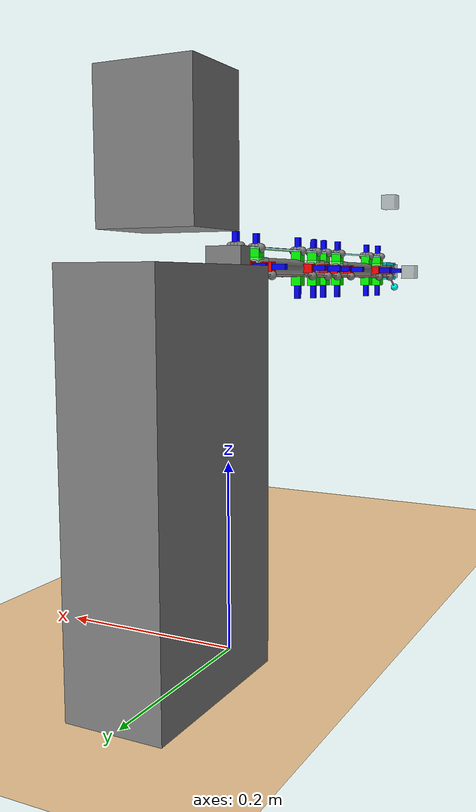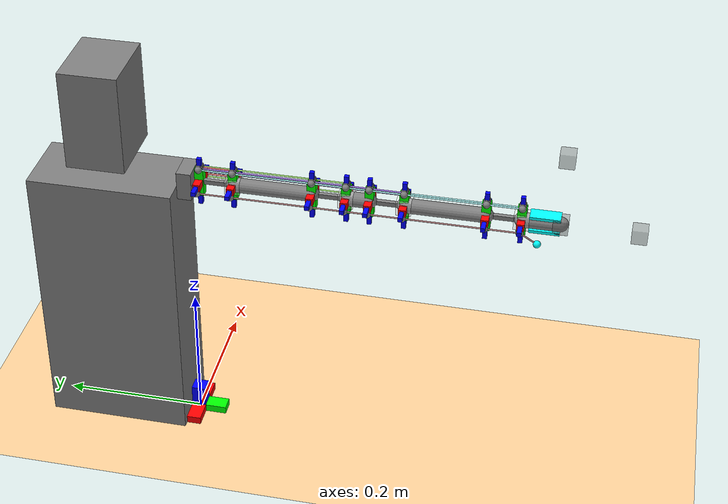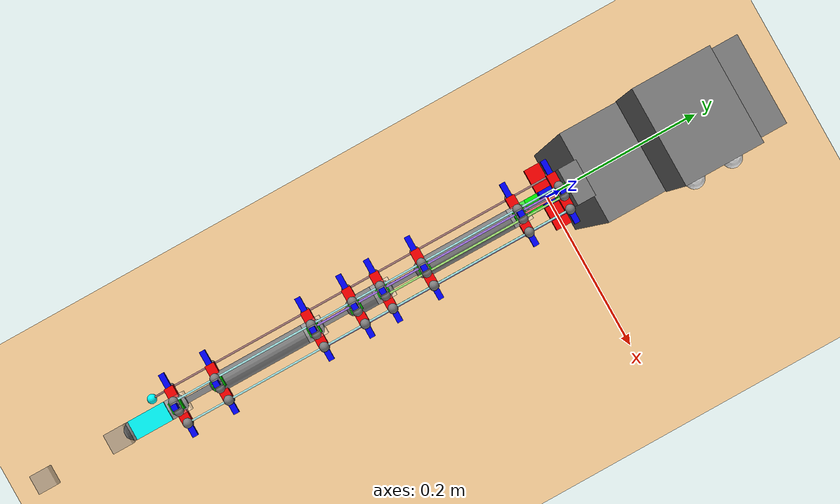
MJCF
<mujoco>

<!-- Default-Parameter für Geometrien -->
<default>
    <geom density="300"/>
</default>

<!-- Simulationsoptionen -->
<option gravity="0 0 0"/>

<!-- Compiler- und Asset-Einstellungen -->
<compiler angle="radian" meshdir="." autolimits="true"/>
<asset>
    <!-- Optional: STL-Modelle hier einfügen -->
</asset>

<worldbody>

    <!-- Lichtquelle -->
    <light directional="true" pos="-0.5 0.5 3" dir="0 0 -1" />

    <!-- Boden (Tischplatte) -->
    <geom name="table" type="plane" pos="0 0 0" size="1 1 1" rgba="1 0.83 0.61 0.5"/>

    <!-- Orientierungshilfen (Achsen) -->
    <geom name="x-axis" type="box" size="0.04 0.01 0.01" rgba="1 0 0 1" contype="0" conaffinity="0"/>
    <geom name="y-axis" type="box" size="0.01 0.04 0.01" rgba="0 1 0 1" contype="0" conaffinity="0"/>
    <geom name="z-axis" type="box" size="0.01 0.01 0.04" rgba="0 0 1 1" contype="0" conaffinity="0"/>

    <!-- ROBOT Körper -->
    <geom name="robot" type="box" size="0.05 0.1 0.2" pos="0 0.11 0.2" rgba="0.5 0.5 0.5 1" contype="0" conaffinity="0"/>

    <!-- ROBOT Kopf -->
    <geom name="head" type="box" size="0.05 0.04 0.07" pos="0 0.11 0.5" rgba="0.5 0.5 0.5 1" contype="0" conaffinity="0"/>

    <!-- ROBOT Augen -->
    <geom name="eye_left"  type="sphere" size="0.01" pos="0.05 0.09 0.5" rgba="1 1 1 1" contype="0" conaffinity="0"/>
    <geom name="eye_right" type="sphere" size="0.01" pos="0.05 0.13 0.5" rgba="1 1 1 1" contype="0" conaffinity="0"/>

	<!-- Rotate 90° around X axis and place the arm 40 cm above table surface -->
	<body name="arm_base" pos="0 0 0.4" euler="1.5708 0 0">
		<geom name="arm_base_geom" type="box" size="0.02 0.02 0.01" rgba="0.5 0.5 0.5 1" contype="0" conaffinity="0"/>

		<!-- Arm rotation around Z axis -->
		<body name="arm_rot" pos="0 0 0">
			<joint name="arm_z_joint" type="hinge" axis="0 0 1" pos="0 0 0" damping="0.01" range="-3.14 3.14"/>

			<!-- Base of shoulder joint after arm rotation-->
			<body name="shoulder_base" pos="0 0 0">
				<geom name="shoulder_base_geom" type="box" size="0.02 0.02 0.01" rgba="0.5 0.5 0.5 1" contype="0" conaffinity="0"/>

				<!-- Shoulder frame with tendon anchors -->
				<body name="shoulder_frame" pos="0 0 0.04">
					<geom name="shoulder_frame_x" type="box" size="0.003" fromto="-.035 0 -.023 .035 0 -.023" rgba="0 0 1 1" contype="0" conaffinity="0"/>
					<geom name="shoulder_frame_y" type="box" size="0.003" fromto="0 -.035 -.023 0 .035 -.023" rgba="0 0 1 1" contype="0" conaffinity="0"/>

					<!-- Tendon anchors (8 starts + 1 gripper) -->
					<site name="sh_tendon_gripper"        pos=" -0.0186 -0.0087  -0.023" size="0.005 "/>
					<site name="sh_tendon_x_start_1"      pos=" 0.0204 -0.0018  -0.023" size="0.005 "/>
					<site name="sh_tendon_x_start_2"      pos=" 0.0198 -0.0053  -0.023" size="0.005 "/>
					<site name="sh_tendon_x_start_3"      pos=" 0.0204  0.0018  -0.023" size="0.005 "/>
					<site name="sh_tendon_x_start_4"      pos=" 0.0198  0.0053  -0.023" size="0.005 "/>
					<site name="sh_tendon_y_start_1"      pos=" 0.0018  0.0204  -0.023" size="0.005 "/>
					<site name="sh_tendon_y_start_2"      pos=" 0.0053  0.0198  -0.023" size="0.005 "/>
					<site name="sh_tendon_y_start_3"      pos=" -0.0018 0.0204  -0.023" size="0.005 "/>
					<site name="sh_tendon_y_start_4"      pos=" -0.0053 0.0198  -0.023" size="0.005 "/>

                    <body name="shoulder_xjoint1" pos="0 0 0">
                        <geom name="shoulder_xjoint1" type="box" size=".005" fromto="-.02 0 -.023 .02 0 -.023" rgba="1 0 0 1" contype="0" conaffinity="0"/>
                        <joint name="shoulder_xjoint1" type="hinge" axis="1 0 0" pos="0 0 -.023" damping="0.02" range="-0.7854 0.7854"/>

                        <body name="shoulder_yjoint1" pos="0 0 0">
                            <geom name="shoulder_connector" type="box" size=".003" fromto="0 0 -.023 0 0 .023" rgba=".5 .5 .5 1" contype="0" conaffinity="0"/>
                            <geom name="shoulder_yjoint1" type="box" size=".006" fromto="0 0.02 -.023 0 -0.02 -.023" rgba="0 1 0 1" contype="0" conaffinity="0"/>
                            <joint name="shoulder_yjoint1" type="hinge" axis="0 1 0" pos="0 0 -.023" damping="0.02" range="-0.7854 0.7854"/>

                            <geom name="shoulder_yjoint2" type="box" size=".006" fromto="0 0.02 .023 0 -0.02 .023" rgba="0 1 0 1" contype="0" conaffinity="0"/>
                            <body name="shoulder_yjoint2" pos="0 0 0">
                                <joint name="shoulder_yjoint2" type="hinge" axis="0 1 0" pos="0 0 .023" damping="0.02" range="-0.7854 0.7854"/>

                                <geom name="shoulder_xjoint2" type="box" size=".005" fromto="-.02 0 .023 .02 0 .023" rgba="1 0 0 1" contype="0" conaffinity="0"/>
                                <body name="shoulder_end" pos="0 0 .023">
                                    <geom name="shoulder_box" type="box" size=".01 .01 .01" rgba="1 1 1 .3" contype="0" conaffinity="0" mass="0"/>
                                    <joint name="shoulder_xjoint2" type="hinge" axis="1 0 0" pos="0 0 0" damping="0.02" range="-0.7854 0.7854"/>
                                    <geom name="endframex" type="box" size=".003" fromto="-.035 0 0 .035 0 0" rgba="0 0 1 1" contype="0" conaffinity="0"/>
                                    <geom name="endframey" type="box" size=".003" fromto="0 -.035 0 0 .035 0" rgba="0 0 1 1" contype="0" conaffinity="0"/>
                                    <!-- Seilanker (8 Endpunkte + 1* gripper) -->
                                    <site name="sh_tendon_gripper_end"     pos=" -0.0186 -0.0087  0.0" size="0.005"/>
                                    <site name="sh_tendon_x_end_1"         pos=" 0.0204 -0.0018  0.0" size="0.005"/>
                                    <site name="sh_tendon_x_end_2"         pos=" 0.0198 -0.0053  0.0" size="0.005"/>
                                    <site name="sh_tendon_x_end_3"         pos=" 0.0204  0.0018  0.0" size="0.005"/>
                                    <site name="sh_tendon_x_end_4"         pos=" 0.0198  0.0053  0.0" size="0.005"/>
                                    <site name="sh_tendon_y_end_1"         pos=" 0.0018  0.0204  0.0" size="0.005"/>
                                    <site name="sh_tendon_y_end_2"         pos=" 0.0053  0.0198  0.0" size="0.005"/>
                                    <site name="sh_tendon_y_end_3"         pos=" -0.0018 0.0204  0.0" size="0.005"/>
                                    <site name="sh_tendon_y_end_4"         pos=" -0.0053 0.0198  0.0" size="0.005"/>

                                    <!-- Connector between shoulder and elbow -->
                                    <geom name="link_shoulder_elbow1" type="capsule" fromto="0 0 0 0 0 0.107" size="0.01" rgba="0.5 0.5 0.5 1" contype="0" conaffinity="0"/>

                                    <!-- ELBOW JOINT 1 -->
                                    <body name="elbow1base" pos="0 0 0.13">
                                        <geom name="elbow1framex" type="box" size=".003" fromto="-.035 0 -.023 .035 0 -.023" rgba="0 0 1 1" contype="0" conaffinity="0"/>
                                        <geom name="elbow1framey" type="box" size=".003" fromto="0 -.035 -.023 0 .035 -.023" rgba="0 0 1 1" contype="0" conaffinity="0"/>
                                        <!-- Seilanker el1 (8 Startpunkte + 1* gripper) -->
                                        <site name="el1_tendon_gripper"     pos=" -0.0186 -0.0087  -0.023" size="0.005 "/>
                                        <site name="el1_tendon_x_start_1"   pos=" 0.0204 -0.0018  -0.023" size="0.005 "/>
                                        <site name="el1_tendon_x_start_2"   pos=" 0.0198 -0.0053  -0.023" size="0.005 "/>
                                        <site name="el1_tendon_x_start_3"   pos=" 0.0204  0.0018  -0.023" size="0.005 "/>
                                        <site name="el1_tendon_x_start_4"   pos=" 0.0198  0.0053  -0.023" size="0.005 "/>
                                        <site name="el1_tendon_y_start_1"   pos=" 0.0018  0.0204  -0.023" size="0.005 "/>
                                        <site name="el1_tendon_y_start_2"   pos=" 0.0053  0.0198  -0.023" size="0.005 "/>
                                        <site name="el1_tendon_y_start_3"   pos=" -0.0018 0.0204  -0.023" size="0.005 "/>
                                        <site name="el1_tendon_y_start_4"   pos=" -0.0053 0.0198  -0.023" size="0.005 "/>

                                        <body name="elbow1_xjoint1" pos="0 0 0">
                                            <geom name="elbow1_xjoint1" type="box" size=".005" fromto="-.02 0 -.023 .02 0 -.023" rgba="1 0 0 1" contype="0" conaffinity="0"/>
                                            <joint name="elbow1_xjoint1" type="hinge" axis="1 0 0" pos="0 0 -.023" damping="0.02" range="-0.7854 0.7854" />
                                            <body name="elbow1_yjoint1" pos="0 0 0">
                                                <geom name="elbow1_connector" type="box" size=".003" fromto="0 0 -.023 0 0 .023" rgba=".5 .5 .5 1" contype="0" conaffinity="0"/>
                                                <geom name="elbow1_yjoint1" type="box" size=".006" fromto="0 0.02 -.023 0 -0.02 -.023" rgba="0 1 0 1" contype="0" conaffinity="0"/>
                                                <joint name="elbow1_yjoint1" type="hinge" axis="0 1 0" pos="0 0 -.023" damping="0.02" range="-0.7854 0.7854"/>
                                                <geom name="elbow1_yjoint2" type="box" size=".006" fromto="0 0.02 .023 0 -0.02 .023" rgba="0 1 0 1" contype="0" conaffinity="0"/>
                                                <body name="elbow1_yjoint2" pos="0 0 0">
                                                    <joint name="elbow1_yjoint2" type="hinge" axis="0 1 0" pos="0 0 .023" damping="0.02" range="-0.7854 0.7854"/>
                                                    <geom name="elbow1_xjoint2" type="box" size=".005" fromto="-.02 0 .023 .02 0 .023" rgba="1 0 0 1" contype="0" conaffinity="0"/>
                                                    <body name="elbow1_end" pos="0 0 .023">
                                                        <geom name="elbow1_box" type="box" size=".01 .01 .01" rgba="1 1 1 .3" contype="0" conaffinity="0" mass="0"/>
                                                        <joint name="elbow1_xjoint2" type="hinge" axis="1 0 0" pos="0 0 0" damping="0.02" range="-0.7854 0.7854"/>
                                                        <geom name="elbow1framex_end" type="box" size=".003" fromto="-.035 0 0 .035 0 0" rgba="0 0 1 1" contype="0" conaffinity="0"/>
                                                        <geom name="elbow1framey_end" type="box" size=".003" fromto="0 -.035 0 0 .035 0" rgba="0 0 1 1" contype="0" conaffinity="0"/>
                                                        <!-- Seilanker el1 (8 Endpunkte + 1* gripper) -->
                                                        <site name="el1_tendon_gripper_end"     pos=" -0.0186 -0.0087  0.0" size="0.005"/>
                                                        <site name="el1_tendon_x_end_1"         pos=" 0.0204 -0.0018  0.0" size="0.005"/>
                                                        <site name="el1_tendon_x_end_2"         pos=" 0.0198 -0.0053  0.0" size="0.005"/>
                                                        <site name="el1_tendon_x_end_3"         pos=" 0.0204  0.0018  0.0" size="0.005"/>
                                                        <site name="el1_tendon_x_end_4"         pos=" 0.0198  0.0053  0.0" size="0.005"/>
                                                        <site name="el1_tendon_y_end_1"         pos=" 0.0018  0.0204  0.0" size="0.005"/>
                                                        <site name="el1_tendon_y_end_2"         pos=" 0.0053  0.0198  0.0" size="0.005"/>
                                                        <site name="el1_tendon_y_end_3"         pos=" -0.0018 0.0204  0.0" size="0.005"/>
                                                        <site name="el1_tendon_y_end_4"         pos=" -0.0053 0.0198  0.0" size="0.005"/>

                                                        <!--Connector between elbow1 and elbow2-->
                                                        <geom name="link_elbow1_elbow2" type="capsule" fromto="0 0 0 0 0 0.031" size="0.01" rgba="0.5 0.5 0.5 1" contype="0" conaffinity="0"/>
                                                        <site  name="elbow_site" pos="0 0 0.0155" size="0.01" rgba="0 1 1 1"/>
                                                        <!-- ELBOW JOINT 2 -->
                                                        <body name="elbow2base" pos="0 0 0.054">
                                                            <geom name="elbow2framex" type="box" size=".003" fromto="-.035 0 -.023 .035 0 -.023" rgba="0 0 1 1" contype="0" conaffinity="0"/>
                                                            <geom name="elbow2framey" type="box" size=".003" fromto="0 -.035 -.023 0 .035 -.023" rgba="0 0 1 1" contype="0" conaffinity="0"/>
                                                            <!-- Seilanker el2 (8 Startpunkte + 1* gripper) -->
                                                            <site name="el2_tendon_gripper"     pos=" -0.0186 -0.0087  -0.023" size="0.005 "/>
                                                            <site name="el2_tendon_x_start_1"   pos=" 0.0204 -0.0018  -0.023" size="0.005 "/>
                                                            <site name="el2_tendon_x_start_2"   pos=" 0.0198 -0.0053  -0.023" size="0.005 "/>
                                                            <site name="el2_tendon_x_start_3"   pos=" 0.0204  0.0018  -0.023" size="0.005 "/>
                                                            <site name="el2_tendon_x_start_4"   pos=" 0.0198  0.0053  -0.023" size="0.005 "/>
                                                            <site name="el2_tendon_y_start_1"   pos=" 0.0018  0.0204  -0.023" size="0.005 "/>
                                                            <site name="el2_tendon_y_start_2"   pos=" 0.0053  0.0198  -0.023" size="0.005 "/>
                                                            <site name="el2_tendon_y_start_3"   pos=" -0.0018 0.0204  -0.023" size="0.005 "/>
                                                            <site name="el2_tendon_y_start_4"   pos=" -0.0053 0.0198  -0.023" size="0.005 "/>

                                                            <body name="elbow2_xjoint1" pos="0 0 0">
                                                                <geom name="elbow2_xjoint1" type="box" size=".005" fromto="-.02 0 -.023 .02 0 -.023" rgba="1 0 0 1" contype="0" conaffinity="0"/>
                                                                <joint name="elbow2_xjoint1" type="hinge" axis="1 0 0" pos="0 0 -.023" damping="0.02" range="-0.7854 0.7854"/>
                                                                <body name="elbow2_yjoint1" pos="0 0 0">
                                                                    <geom name="elbow2_connector" type="box" size=".003" fromto="0 0 -.023 0 0 .023" rgba=".5 .5 .5 1" contype="0" conaffinity="0"/>
                                                                    <geom name="elbow2_yjoint1" type="box" size=".006" fromto="0 0.02 -.023 0 -0.02 -.023" rgba="0 1 0 1" contype="0" conaffinity="0"/>
                                                                    <joint name="elbow2_yjoint1" type="hinge" axis="0 1 0" pos="0 0 -.023" damping="0.02" range="-0.7854 0.7854"/>
                                                                    <geom name="elbow2_yjoint2" type="box" size=".006" fromto="0 0.02 .023 0 -0.02 .023" rgba="0 1 0 1" contype="0" conaffinity="0"/>
                                                                    <body name="elbow2_yjoint2" pos="0 0 0">
                                                                        <joint name="elbow2_yjoint2" type="hinge" axis="0 1 0" pos="0 0 .023" damping="0.02" range="-0.7854 0.7854"/>
                                                                        <geom name="elbow2_xjoint2" type="box" size=".005" fromto="-.02 0 .023 .02 0 .023" rgba="1 0 0 1" contype="0" conaffinity="0"/>
                                                                        <body name="elbow2_end" pos="0 0 .023">
                                                                            <geom name="elbow2_box" type="box" size=".01 .01 .01" rgba="1 1 1 .3" contype="0" conaffinity="0" mass="0"/>
                                                                            <joint name="elbow2_xjoint2" type="hinge" axis="1 0 0" pos="0 0 0" damping="0.02" range="-0.7854 0.7854"/>
                                                                            <geom name="elbow2framex_end" type="box" size=".003" fromto="-.035 0 0 .035 0 0" rgba="0 0 1 1" contype="0" conaffinity="0"/>
                                                                            <geom name="elbow2framey_end" type="box" size=".003" fromto="0 -.035 0 0 .035 0" rgba="0 0 1 1" contype="0" conaffinity="0"/>
                                                                            <!-- Seilanker el2 (8 Endpunkte + 1* gripper) -->
                                                                            <site name="el2_tendon_gripper_end"     pos=" -0.0186 -0.0087  0.0" size="0.005"/>
                                                                            <site name="el2_tendon_x_end_1"         pos=" 0.0204 -0.0018  0.0" size="0.005"/>
                                                                            <site name="el2_tendon_x_end_2"         pos=" 0.0198 -0.0053  0.0" size="0.005"/>
                                                                            <site name="el2_tendon_x_end_3"         pos=" 0.0204  0.0018  0.0" size="0.005"/>
                                                                            <site name="el2_tendon_x_end_4"         pos=" 0.0198  0.0053  0.0" size="0.005"/>
                                                                            <site name="el2_tendon_y_end_1"         pos=" 0.0018  0.0204  0.0" size="0.005"/>
                                                                            <site name="el2_tendon_y_end_2"         pos=" 0.0053  0.0198  0.0" size="0.005"/>
                                                                            <site name="el2_tendon_y_end_3"         pos=" -0.0018 0.0204  0.0" size="0.005"/>
                                                                            <site name="el2_tendon_y_end_4"         pos=" -0.0053 0.0198  0.0" size="0.005"/>

                                                                            <!--Connector between elbow2 and wrist-->
                                                                            <geom name="link_elbow2_wrist" type="capsule" fromto="0 0 0 0 0 0.107" size="0.01" rgba="0.5 0.5 0.5 1" contype="0" conaffinity="0"/>

                                                                            <!-- WRIST JOINT -->

                                                                            <body name="wristbase" pos="0 0 0.13">
                                                                                <geom name="wristframex" type="box" size=".003" fromto="-.035 0 -.023 .035 0 -.023" rgba="0 0 1 1" contype="0" conaffinity="0"/>
                                                                                <geom name="wristframey" type="box" size=".003" fromto="0 -.035 -.023 0 .035 -.023" rgba="0 0 1 1" contype="0" conaffinity="0"/>
                                                                            <!-- Seilanker wr (8 Startpunkte + 1* gripper) -->
                                                                            <site name="wr_tendon_gripper"     pos=" -0.0186 -0.0087  -0.023" size="0.005 "/>
                                                                            <site name="wr_tendon_x_start_1"   pos=" 0.0204 -0.0018  -0.023" size="0.005 "/>
                                                                            <site name="wr_tendon_x_start_2"   pos=" 0.0198 -0.0053  -0.023" size="0.005 "/>
                                                                            <site name="wr_tendon_x_start_3"   pos=" 0.0204  0.0018  -0.023" size="0.005 "/>
                                                                            <site name="wr_tendon_x_start_4"   pos=" 0.0198  0.0053  -0.023" size="0.005 "/>
                                                                            <site name="wr_tendon_y_start_1"   pos=" 0.0018  0.0204  -0.023" size="0.005 "/>
                                                                            <site name="wr_tendon_y_start_2"   pos=" 0.0053  0.0198  -0.023" size="0.005 "/>
                                                                            <site name="wr_tendon_y_start_3"   pos=" -0.0018 0.0204  -0.023" size="0.005 "/>
                                                                            <site name="wr_tendon_y_start_4"   pos=" -0.0053 0.0198  -0.023" size="0.005 "/>

                                                                                <body name="wrist_xjoint1" pos="0 0 0">
                                                                                    <geom name="wrist_xjoint1" type="box" size=".005" fromto="-.02 0 -.023 .02 0 -.023" rgba="1 0 0 1" contype="0" conaffinity="0"/>
                                                                                    <joint name="wrist_xjoint1" type="hinge" axis="1 0 0" pos="0 0 -.023" damping="0.02" range="-0.7854 0.7854"/>
                                                                                    <body name="wrist_yjoint1" pos="0 0 0">
                                                                                        <geom name="wrist_connector" type="box" size=".003" fromto="0 0 -.023 0 0 .023" rgba=".5 .5 .5 1" contype="0" conaffinity="0"/>
                                                                                        <geom name="wrist_yjoint1" type="box" size=".006" fromto="0 0.02 -.023 0 -0.02 -.023" rgba="0 1 0 1" contype="0" conaffinity="0"/>
                                                                                        <joint name="wrist_yjoint1" type="hinge" axis="0 1 0" pos="0 0 -.023" damping="0.02" range="-0.7854 0.7854"/>
                                                                                        <geom name="wrist_yjoint2" type="box" size=".006" fromto="0 0.02 .023 0 -0.02 .023" rgba="0 1 0 1" contype="0" conaffinity="0"/>
                                                                                        <body name="wrist_yjoint2" pos="0 0 0">
                                                                                            <joint name="wrist_yjoint2" type="hinge" axis="0 1 0" pos="0 0 .023" damping="0.02" range="-0.7854 0.7854"/>
                                                                                            <geom name="wrist_xjoint2" type="box" size=".005" fromto="-.02 0 .023 .02 0 .023" rgba="1 0 0 1" contype="0" conaffinity="0"/>
                                                                                            <body name="wrist_end" pos="0 0 .023">
                                                                                                <geom name="wrist_box" type="box" size=".01 .01 .01" rgba="1 1 1 .3" contype="0" conaffinity="0" mass="0"/>
                                                                                                <joint name="wrist_xjoint2" type="hinge" axis="1 0 0" pos="0 0 0" damping="0.02" range="-0.7854 0.7854"/>
                                                                                                <geom name="wristframex_end" type="box" size=".003" fromto="-.035 0 0 .035 0 0" rgba="0 0 1 1" contype="0" conaffinity="0"/>
                                                                                                <geom name="wristframey_end" type="box" size=".003" fromto="0 -.035 0 0 .035 0" rgba="0 0 1 1" contype="0" conaffinity="0"/>
                                                                                                <!-- Seilanker wr (8 Endpunkte + 1* gripper) -->
                                                                                                <site name="wr_tendon_gripper_end"     pos=" -0.0186 -0.0087  0.0" size="0.005"/>
                                                                                                <site name="wr_tendon_x_end_1"         pos=" 0.0204 -0.0018  0.0" size="0.005"/>
                                                                                                <site name="wr_tendon_x_end_2"         pos=" 0.0198 -0.0053  0.0" size="0.005"/>
                                                                                                <site name="wr_tendon_x_end_3"         pos=" 0.0204  0.0018  0.0" size="0.005"/>
                                                                                                <site name="wr_tendon_x_end_4"         pos=" 0.0198  0.0053  0.0" size="0.005"/>
                                                                                                <site name="wr_tendon_y_end_1"         pos=" 0.0018  0.0204  0.0" size="0.005"/>
                                                                                                <site name="wr_tendon_y_end_2"         pos=" 0.0053  0.0198  0.0" size="0.005"/>
                                                                                                <site name="wr_tendon_y_end_3"         pos=" -0.0018 0.0204  0.0" size="0.005"/>
                                                                                                <site name="wr_tendon_y_end_4"         pos=" -0.0053 0.0198  0.0" size="0.005"/>

                                                                                                <!--Connector between wrist and hand-->
                                                                                                <geom name="link_wrist_hand" type="capsule" fromto="0 0 0 0 0 0.05" size="0.01" rgba="0.5 0.5 0.5 1" contype="0" conaffinity="0"/>
                                                                                                <body name="griperrotation" euler= "0 0 -1.5708">
                                                                                                    <geom name="gripperfix" type="box" size=".002 .01 .02" pos = "-.01 0 .03" rgba="0 1 1 1" contype="0" conaffinity="0" />
                                                                                                    <!--gripper-->
                                                                                                    <body name="gripper" pos="0 0 0.0">
                                                                                                        <joint name="gripper" type="hinge" axis="0 1 0" pos="0 0 0.024" damping="0.02" range="-0.7854 0.7854"/>
                                                                                                        <geom name="gripper" type="box" size=".002 .01 .02" pos = ".01 0 .03" rgba="0 1 1 1" contype="0" conaffinity="0"  />
                                                                                                        <site name="gripper_site" pos="0.023 -0.018 0.023" size="0.005" rgba="0 1 1 1"/>
                                                                                                    </body>
                                                                                                </body>

                                                                                                <!-- HAND EEF Site-->
                                                                                                <body name="handbase" pos="0 0 0.05">
                                                                                                    <body name="eef_body1" pos="0 0 0">
                                                                                                        <geom name="eef_geom1" type="box" size=".01 .01 .01" rgba=".5 .5 .5 .5" contype="0" conaffinity="0"/>
                                                                                                    </body>
                                                                                                    <body name="eef_body2" pos="0 0.1 0 ">
                                                                                                        <geom name="eef_geom2" type="box" size=".01 .01 .01" rgba=".5 .5 .5 .5" contype="0" conaffinity="0"/>
                                                                                                    </body>
                                                                                                    <body name="eef_body3" pos="0 0 0.1 ">
                                                                                                        <geom name="eef_geom3" type="box" size=".01 .01 .01" rgba=".5 .5 .5 .5" contype="0" conaffinity="0"/>
                                                                                                    </body>
                                                                                                </body>
                                                                                            </body>
                                                                                        </body>
                                                                                    </body>
                                                                                </body>
                                                                            </body>
                                                                        </body>
                                                                    </body>
                                                                </body>
                                                            </body>
                                                        </body>
                                                    </body>
                                                </body>
                                            </body>
                                        </body>
                                    </body>
                                </body>
                            </body>
                        </body>
                    </body>
                </body>
            </body>
        </body>
	</body>

	<!-- Optional for spring-damper inverse kinematics (can be toggled via ) -->

</worldbody>

<equality>
    <!-- Couple the sub-joints of each rolling contact pair (X and Y) -->
    <joint joint1="shoulder_xjoint1" joint2="shoulder_xjoint2" polycoef="0 1 0 0 0" solref="0.002 0.5" solimp="0.95 0.98 0.001"/>
    <joint joint1="shoulder_yjoint1" joint2="shoulder_yjoint2" polycoef="0 1 0 0 0" solref="0.002 0.5" solimp="0.95 0.98 0.001"/>
    <joint joint1="elbow1_xjoint1"   joint2="elbow1_xjoint2"   polycoef="0 1 0 0 0" solref="0.002 0.5" solimp="0.95 0.98 0.001"/>
    <joint joint1="elbow1_yjoint1"   joint2="elbow1_yjoint2"   polycoef="0 1 0 0 0" solref="0.002 0.5" solimp="0.95 0.98 0.001"/>
    <joint joint1="elbow2_xjoint1"   joint2="elbow2_xjoint2"   polycoef="0 1 0 0 0" solref="0.002 0.5" solimp="0.95 0.98 0.001"/>
    <joint joint1="elbow2_yjoint1"   joint2="elbow2_yjoint2"   polycoef="0 1 0 0 0" solref="0.002 0.5" solimp="0.95 0.98 0.001"/>
    <joint joint1="wrist_xjoint1"    joint2="wrist_xjoint2"    polycoef="0 1 0 0 0" solref="0.002 0.5" solimp="0.95 0.98 0.001"/>
    <joint joint1="wrist_yjoint1"    joint2="wrist_yjoint2"    polycoef="0 1 0 0 0" solref="0.002 0.5" solimp="0.95 0.98 0.001"/>

    <!-- Coupling between elbow1 and elbow2 for IK (for forward kinematics, set values manually) -->

    <!-- Weld target and end-effector (EEF) sites for inverse kinematics -->

	<!-- Inverse kinematics: weld elbow target and elbow with very loose coupling -->
</equality>

<tendon>
    <!-- Tendon set 1: shoulder -->
    <spatial name="tendon_x_1" width="0.001" rgba="1 .5 .5 1">
        <site site="sh_tendon_x_start_1"/>
        <site site="sh_tendon_x_end_1"/>
    </spatial>
    <spatial name="tendon_y_1" width="0.001" rgba="1 .5 .5 1">
        <site site="sh_tendon_y_start_1"/>
        <site site="sh_tendon_y_end_1"/>
    </spatial>

    <!-- Tendon set 2: shoulder + elbow1 -->
    <spatial name="tendon_x_2" width="0.001" rgba=".7 1 .5 1">
        <site site="sh_tendon_x_start_2"/>
        <site site="sh_tendon_x_end_2"/>
        <site site="el1_tendon_x_start_2"/>
        <site site="el1_tendon_x_end_2"/>
    </spatial>
    <spatial name="tendon_y_2" width="0.001" rgba=".7 1 .5 1">
        <site site="sh_tendon_y_start_2"/>
        <site site="sh_tendon_y_end_2"/>
        <site site="el1_tendon_y_start_2"/>
        <site site="el1_tendon_y_end_2"/>
    </spatial>

    <!-- Tendon set 3: shoulder + elbow1 + elbow2 -->
    <spatial name="tendon_x_3" width="0.001" rgba=".7 .5 1 1">
        <site site="sh_tendon_x_start_3"/>
        <site site="sh_tendon_x_end_3"/>
        <site site="el1_tendon_x_start_3"/>
        <site site="el1_tendon_x_end_3"/>
        <site site="el2_tendon_x_start_3"/>
        <site site="el2_tendon_x_end_3"/>
    </spatial>
    <spatial name="tendon_y_3" width="0.001" rgba=".7 .5 1 1">
        <site site="sh_tendon_y_start_3"/>
        <site site="sh_tendon_y_end_3"/>
        <site site="el1_tendon_y_start_3"/>
        <site site="el1_tendon_y_end_3"/>
        <site site="el2_tendon_y_start_3"/>
        <site site="el2_tendon_y_end_3"/>
    </spatial>

    <!-- Tendon set 4: full chain including wrist -->
    <spatial name="tendon_x_4" width="0.001" rgba=".7 1 1 1">
        <site site="sh_tendon_x_start_4"/>
        <site site="sh_tendon_x_end_4"/>
        <site site="el1_tendon_x_start_4"/>
        <site site="el1_tendon_x_end_4"/>
        <site site="el2_tendon_x_start_4"/>
        <site site="el2_tendon_x_end_4"/>
        <site site="wr_tendon_x_start_4"/>
        <site site="wr_tendon_x_end_4"/>
    </spatial>
    <spatial name="tendon_y_4" width="0.001" rgba=".7 1 1 1">
        <site site="sh_tendon_y_start_4"/>
        <site site="sh_tendon_y_end_4"/>
        <site site="el1_tendon_y_start_4"/>
        <site site="el1_tendon_y_end_4"/>
        <site site="el2_tendon_y_start_4"/>
        <site site="el2_tendon_y_end_4"/>
        <site site="wr_tendon_y_start_4"/>
        <site site="wr_tendon_y_end_4"/>
    </spatial>

    <!-- Gripper tendon through entire chain -->
    <spatial name="tendon_gripper" width="0.001" rgba=".7 .5 .5 1">
        <site site="sh_tendon_gripper"/>
        <site site="sh_tendon_gripper_end"/>
        <site site="el1_tendon_gripper"/>
        <site site="el1_tendon_gripper_end"/>
        <site site="el2_tendon_gripper"/>
        <site site="el2_tendon_gripper_end"/>
        <site site="wr_tendon_gripper"/>
        <site site="wr_tendon_gripper_end"/>
        <site site="gripper_site"/>
    </spatial>
</tendon>

<actuator>
    <!-- Optional inverse kinematics actuators (can be toggled) -->

    <!-- Optional forward kinematics tendon actuators (can be toggled) -->
    <!-- fk start -->
    <position name="motor_base_z" joint="arm_z_joint" ctrlrange="-3.14 3.14" kp="20"/>
    <position name="motor_sh_x" tendon="tendon_x_1" ctrlrange="0.011 0.081" kp="1000"/>
    <position name="motor_sh_y" tendon="tendon_y_1" ctrlrange="0.011 0.081" kp="1000"/>
    <position name="motor_eb1_x" tendon="tendon_x_2" ctrlrange="0.129 0.269" kp="500"/>
    <position name="motor_eb1_y" tendon="tendon_y_2" ctrlrange="0.129 0.269" kp="500"/>
    <position name="motor_eb2_x" tendon="tendon_x_3" ctrlrange="0.171 0.381" kp="1000"/>
    <position name="motor_eb2_y" tendon="tendon_y_3" ctrlrange="0.171 0.381" kp="1000"/>
    <position name="motor_wr_x" tendon="tendon_x_4" ctrlrange="0.279 0.579" kp="1000"/>
    <position name="motor_wr_y" tendon="tendon_y_4" ctrlrange="0.279 0.579" kp="1000"/>
    <!-- fk end -->

    <!-- Gripper actuator (always available) -->
    <position name="motor_gripper" joint="gripper" ctrlrange="-3.2 3.2" kp="0.1"/>
</actuator>

</mujoco>
